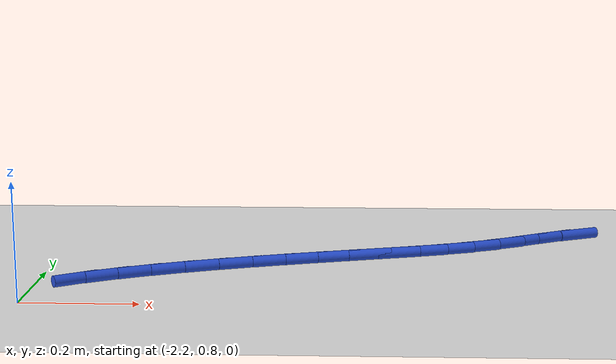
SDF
<sdf version="1.6">
 <world name="default">
  <model name="ground_plane">
   <static>1</static>
   <link name="link">
    <collision name="collision">
     <geometry><plane><normal>0 0 1</normal><size>100 100</size></plane></geometry>
     <surface><friction><ode><mu>100</mu><mu2>50</mu2></ode></friction></surface>
    </collision>
    <visual name="visual">
     <cast_shadows>0</cast_shadows>
     <geometry><plane><normal>0 0 1</normal><size>100 100</size></plane></geometry>
     <material>
      <script><uri>file://media/materials/scripts/gazebo.material</uri><name>Gazebo/WhiteGlow</name></script>
     </material>
    </visual>
   </link>
  </model>
  <model name="line">
   <link name="link_35">
    <pose>-1.231845650270529 1.2888190672866726 0.01 0 1.57 0.44589557251280154</pose>
    <collision name="collision">
     <geometry><cylinder><radius>0.01</radius><length>0.08</length></cylinder></geometry>
    </collision>
    <visual name="visual">
     <material>
      <script><name>Gazebo/Blue</name><uri>file://media/materials/scripts/gazebo.material</uri></script>
     </material>
     <geometry><cylinder><radius>0.01</radius><length>0.08</length></cylinder></geometry>
    </visual>
   </link>
   <link name="link_36">
    <pose>-1.280395118280809 1.2656122812502482 0.01 0 1.57 0.5247782048721744</pose>
    <collision name="collision">
     <geometry><cylinder><radius>0.01</radius><length>0.08</length></cylinder></geometry>
    </collision>
    <visual name="visual">
     <material>
      <script><name>Gazebo/Blue</name><uri>file://media/materials/scripts/gazebo.material</uri></script>
     </material>
     <geometry><cylinder><radius>0.01</radius><length>0.08</length></cylinder></geometry>
    </visual>
   </link>
   <link name="link_37">
    <pose>-1.3295327304025144 1.2371653425236029 0.01 0 1.57 0.5333750159718375</pose>
    <collision name="collision">
     <geometry><cylinder><radius>0.01</radius><length>0.08</length></cylinder></geometry>
    </collision>
    <visual name="visual">
     <material>
      <script><name>Gazebo/Blue</name><uri>file://media/materials/scripts/gazebo.material</uri></script>
     </material>
     <geometry><cylinder><radius>0.01</radius><length>0.08</length></cylinder></geometry>
    </visual>
   </link>
   <link name="link_38">
    <pose>-1.3789012441061739 1.2080152263335109 0.01 0 1.57 0.4787702765543212</pose>
    <collision name="collision">
     <geometry><cylinder><radius>0.01</radius><length>0.08</length></cylinder></geometry>
    </collision>
    <visual name="visual">
     <material>
      <script><name>Gazebo/Blue</name><uri>file://media/materials/scripts/gazebo.material</uri></script>
     </material>
     <geometry><cylinder><radius>0.01</radius><length>0.08</length></cylinder></geometry>
    </visual>
   </link>
   <link name="link_39">
    <pose>-1.4281850783597936 1.182434510265762 0.01 0 1.57 0.4028777444398364</pose>
    <collision name="collision">
     <geometry><cylinder><radius>0.01</radius><length>0.08</length></cylinder></geometry>
    </collision>
    <visual name="visual">
     <material>
      <script><name>Gazebo/Blue</name><uri>file://media/materials/scripts/gazebo.material</uri></script>
     </material>
     <geometry><cylinder><radius>0.01</radius><length>0.08</length></cylinder></geometry>
    </visual>
   </link>
   <link name="link_40">
    <pose>-1.4775914315814827 1.161378040625954 0.01 0 1.57 0.3421307854269002</pose>
    <collision name="collision">
     <geometry><cylinder><radius>0.01</radius><length>0.08</length></cylinder></geometry>
    </collision>
    <visual name="visual">
     <material>
      <script><name>Gazebo/Blue</name><uri>file://media/materials/scripts/gazebo.material</uri></script>
     </material>
     <geometry><cylinder><radius>0.01</radius><length>0.08</length></cylinder></geometry>
    </visual>
   </link>
   <link name="link_41">
    <pose>-1.5276839903265291 1.143538272105965 0.01 0 1.57 0.3015986647448183</pose>
    <collision name="collision">
     <geometry><cylinder><radius>0.01</radius><length>0.08</length></cylinder></geometry>
    </collision>
    <visual name="visual">
     <material>
      <script><name>Gazebo/Blue</name><uri>file://media/materials/scripts/gazebo.material</uri></script>
     </material>
     <geometry><cylinder><radius>0.01</radius><length>0.08</length></cylinder></geometry>
    </visual>
   </link>
   <link name="link_42">
    <pose>-1.579033308563353 1.1275640765227992 0.01 0 1.57 0.2829256089147558</pose>
    <collision name="collision">
     <geometry><cylinder><radius>0.01</radius><length>0.08</length></cylinder></geometry>
    </collision>
    <visual name="visual">
     <material>
      <script><name>Gazebo/Blue</name><uri>file://media/materials/scripts/gazebo.material</uri></script>
     </material>
     <geometry><cylinder><radius>0.01</radius><length>0.08</length></cylinder></geometry>
    </visual>
   </link>
   <link name="link_43">
    <pose>-1.6322099402603745 1.1121043256934604 0.01 0 1.57 0.2831357448004341</pose>
    <collision name="collision">
     <geometry><cylinder><radius>0.01</radius><length>0.08</length></cylinder></geometry>
    </collision>
    <visual name="visual">
     <material>
      <script><name>Gazebo/Blue</name><uri>file://media/materials/scripts/gazebo.material</uri></script>
     </material>
     <geometry><cylinder><radius>0.01</radius><length>0.08</length></cylinder></geometry>
    </visual>
   </link>
   <link name="link_44">
    <pose>-1.6875894459589351 1.0959915237936977 0.01 0 1.57 0.2912530911735141</pose>
    <collision name="collision">
     <geometry><cylinder><radius>0.01</radius><length>0.08</length></cylinder></geometry>
    </collision>
    <visual name="visual">
     <material>
      <script><name>Gazebo/Blue</name><uri>file://media/materials/scripts/gazebo.material</uri></script>
     </material>
     <geometry><cylinder><radius>0.01</radius><length>0.08</length></cylinder></geometry>
    </visual>
   </link>
   <link name="link_45">
    <pose>-1.7446768704162947 1.078877971179829 0.01 0 1.57 0.30430173662034254</pose>
    <collision name="collision">
     <geometry><cylinder><radius>0.01</radius><length>0.08</length></cylinder></geometry>
    </collision>
    <visual name="visual">
     <material>
      <script><name>Gazebo/Blue</name><uri>file://media/materials/scripts/gazebo.material</uri></script>
     </material>
     <geometry><cylinder><radius>0.01</radius><length>0.08</length></cylinder></geometry>
    </visual>
   </link>
   <link name="link_46">
    <pose>-1.8027344265507268 1.0606446517286368 0.01 0 1.57 0.3224008881406608</pose>
    <collision name="collision">
     <geometry><cylinder><radius>0.01</radius><length>0.08</length></cylinder></geometry>
    </collision>
    <visual name="visual">
     <material>
      <script><name>Gazebo/Blue</name><uri>file://media/materials/scripts/gazebo.material</uri></script>
     </material>
     <geometry><cylinder><radius>0.01</radius><length>0.08</length></cylinder></geometry>
    </visual>
   </link>
   <link name="link_47">
    <pose>-1.8610243166068974 1.0411725593686258 0.01 0 1.57 0.3459764837701966</pose>
    <collision name="collision">
     <geometry><cylinder><radius>0.01</radius><length>0.08</length></cylinder></geometry>
    </collision>
    <visual name="visual">
     <material>
      <script><name>Gazebo/Blue</name><uri>file://media/materials/scripts/gazebo.material</uri></script>
     </material>
     <geometry><cylinder><radius>0.01</radius><length>0.08</length></cylinder></geometry>
    </visual>
   </link>
   <link name="link_48">
    <pose>-1.9188087428294711 1.0203426880283002 0.01 0 1.57 0.37577388343253787</pose>
    <collision name="collision">
     <geometry><cylinder><radius>0.01</radius><length>0.08</length></cylinder></geometry>
    </collision>
    <visual name="visual">
     <material>
      <script><name>Gazebo/Blue</name><uri>file://media/materials/scripts/gazebo.material</uri></script>
     </material>
     <geometry><cylinder><radius>0.01</radius><length>0.08</length></cylinder></geometry>
    </visual>
   </link>
   <link name="link_49">
    <pose>-1.9753499074631138 0.998036031636165 0.01 0 1.57 0.41290879181840157</pose>
    <collision name="collision">
     <geometry><cylinder><radius>0.01</radius><length>0.08</length></cylinder></geometry>
    </collision>
    <visual name="visual">
     <material>
      <script><name>Gazebo/Blue</name><uri>file://media/materials/scripts/gazebo.material</uri></script>
     </material>
     <geometry><cylinder><radius>0.01</radius><length>0.08</length></cylinder></geometry>
    </visual>
   </link>
   <link name="link_50">
    <pose>-2.0299100127524916 0.9741335841207245 0.01 0 1.57 0.45895499082207114</pose>
    <collision name="collision">
     <geometry><cylinder><radius>0.01</radius><length>0.08</length></cylinder></geometry>
    </collision>
    <visual name="visual">
     <material>
      <script><name>Gazebo/Blue</name><uri>file://media/materials/scripts/gazebo.material</uri></script>
     </material>
     <geometry><cylinder><radius>0.01</radius><length>0.08</length></cylinder></geometry>
    </visual>
   </link>
   <link name="link_51">
    <pose>-2.081751260942268 0.9485163394104834 0.01 0 1.57 0.5160668625350415</pose>
    <collision name="collision">
     <geometry><cylinder><radius>0.01</radius><length>0.08</length></cylinder></geometry>
    </collision>
    <visual name="visual">
     <material>
      <script><name>Gazebo/Blue</name><uri>file://media/materials/scripts/gazebo.material</uri></script>
     </material>
     <geometry><cylinder><radius>0.01</radius><length>0.08</length></cylinder></geometry>
    </visual>
   </link>
   <link name="link_52">
    <pose>-2.130135854277111 0.921065291433946 0.01 0 1.57 0.5871210532029238</pose>
    <collision name="collision">
     <geometry><cylinder><radius>0.01</radius><length>0.08</length></cylinder></geometry>
    </collision>
    <visual name="visual">
     <material>
      <script><name>Gazebo/Blue</name><uri>file://media/materials/scripts/gazebo.material</uri></script>
     </material>
     <geometry><cylinder><radius>0.01</radius><length>0.08</length></cylinder></geometry>
    </visual>
   </link>
  </model>
 </world>
</sdf>
